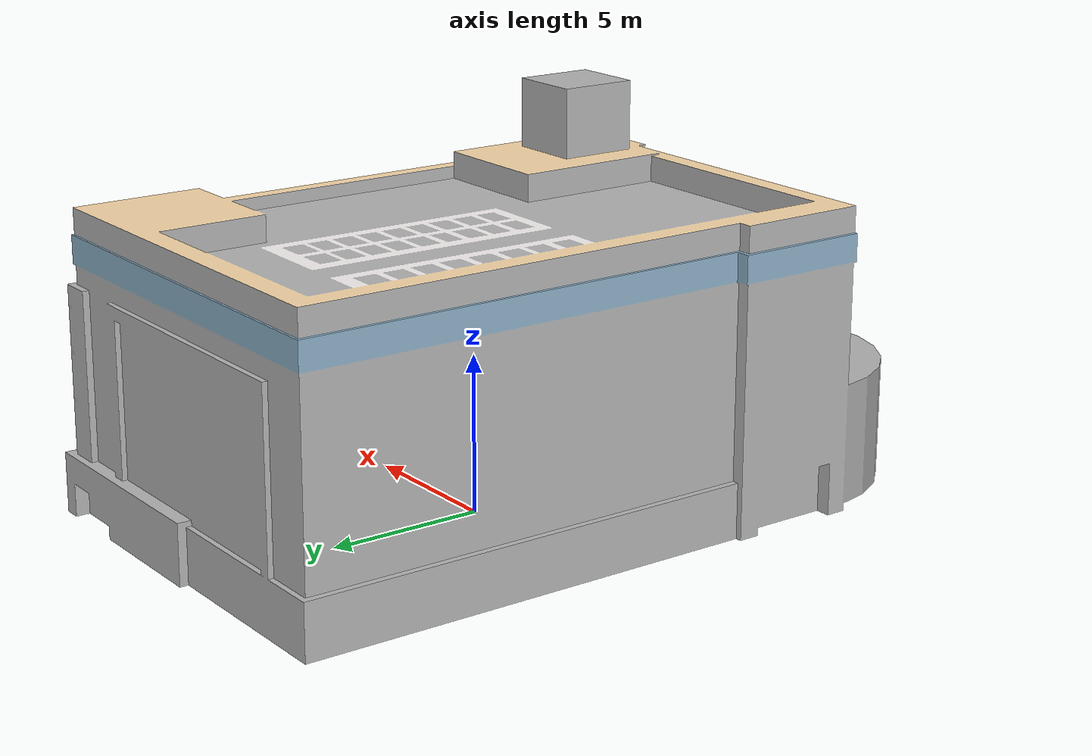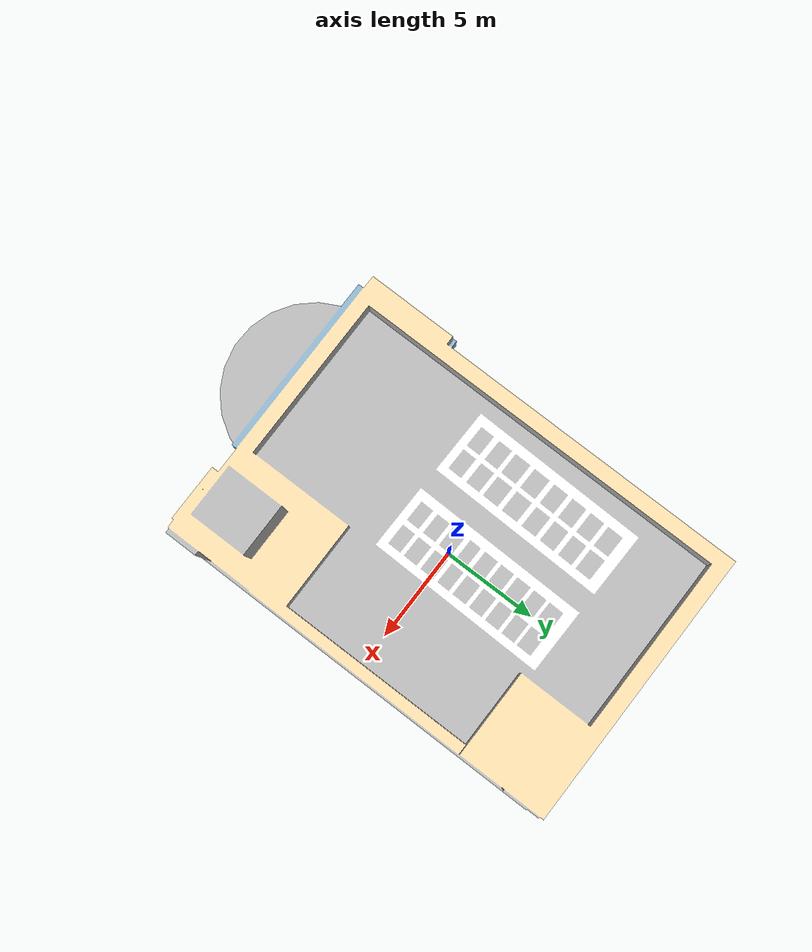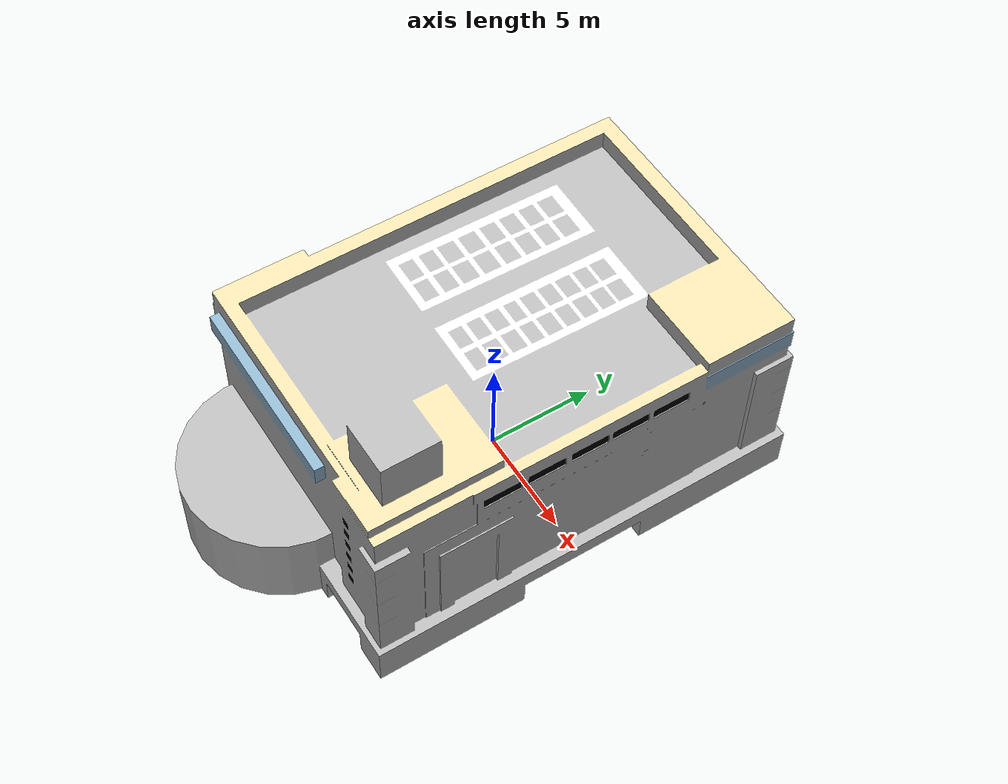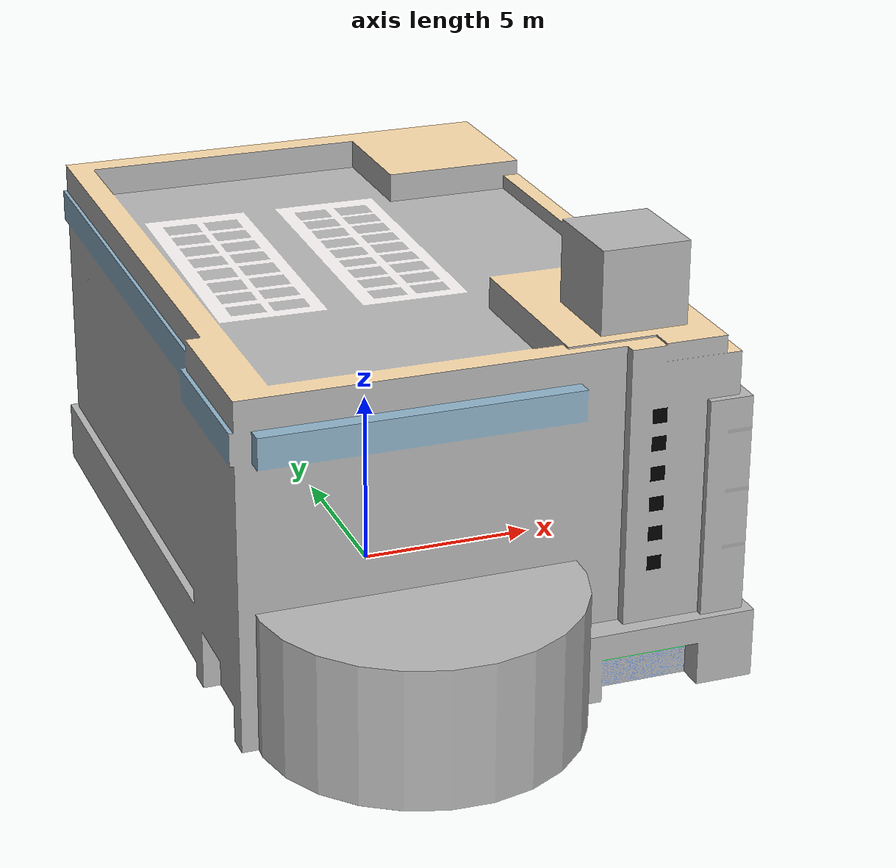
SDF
<?xml version="1.0" ?>
<sdf version='1.6'>
  <model name='emart'>
    <link name='emart_link'>
      <pose frame=''>0 0 0 0 0 0</pose>
      <inertial>
        <pose frame=''>0 0 0 0 -0 0</pose>
        <mass>1.0</mass>
      </inertial>
      <!-- real size : 120 * 68 * 60 -->
      <collision name='emart_col'>
        <pose frame=''>0 0 0 0 -0 0</pose>
        <geometry>
          <mesh>
            <scale>0.2 0.2 0.2</scale>
            <uri>model://emart/emart.stl</uri>
          </mesh>
        </geometry>
      </collision>
      <visual name='emart_vis'>
        <pose frame=''>0 0 0 0 -0 0</pose>
        <geometry>
          <mesh>
            <scale>0.2 0.2 0.2</scale>
            <uri>model://emart/emart.dae</uri>
          </mesh>
        </geometry>
      </visual>
    </link>
  </model>
</sdf>
